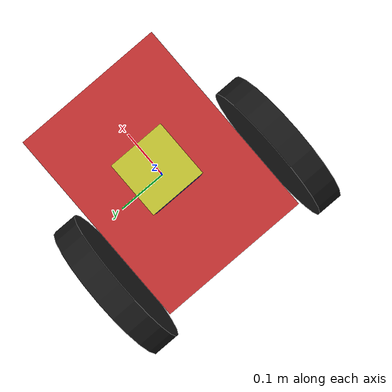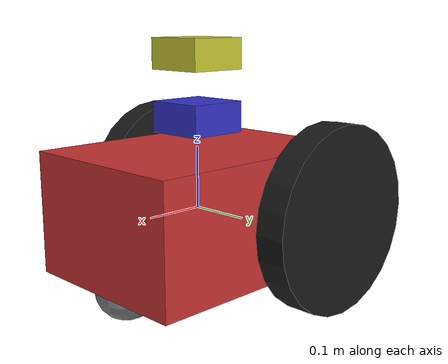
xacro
<?xml version="1.0"?>
<robot xmlns:xacro="http://www.ros.org/wiki/xacro" name="diffbot_sensor">

  <xacro:property name="M_PI" value="3.1415926535897931" />
  <!-- Parameters -->
  <xacro:property name="base_mass" value="5.0" />
  <xacro:property name="wheel_mass" value="0.5" />
  <xacro:property name="caster_mass" value="0.5" />

  <xacro:property name="base_size" value="0.4 0.3 0.2" />
  <xacro:property name="wheel_radius" value="0.15" />
  <xacro:property name="wheel_width" value="0.05" />
  <xacro:property name="caster_radius" value="0.05" />

  <xacro:property name="wheel_separation" value="0.4" />
  <xacro:property name="wheel_y_offset" value="0.2" />
  <xacro:property name="wheel_x_offset" value="-0.1" />
  <xacro:property name="caster_x_offset" value="0.15" />
  <xacro:property name="caster_z_offset" value="-0.1" />

  <!-- Base Link -->
  <link name="base_link">
    <inertial>
      <mass value="${base_mass}" />
      <inertia ixx="0.1" ixy="0.0" ixz="0.0" iyy="0.1" iyz="0.0" izz="0.1" />
    </inertial>
    <visual>
      <geometry>
        <box size="${base_size}" />
      </geometry>
      <material name="red">
        <color rgba="0.8 0.2 0.2 1" />
      </material>
    </visual>
    <collision>
      <geometry>
        <box size="${base_size}" />
      </geometry>
    </collision>
  </link>

  <!-- Wheel Macro -->
  <xacro:macro name="wheel" params="prefix reflect">
    <link name="${prefix}_wheel">
      <inertial>
        <mass value="${wheel_mass}" />
        <inertia ixx="0.02" ixy="0.0" ixz="0.0" iyy="0.02" iyz="0.0" izz="0.02" />
      </inertial>
      <visual>
        <origin xyz="0 0 0" rpy="${M_PI/2} 0 0" />
        <geometry>
          <cylinder radius="${wheel_radius}" length="${wheel_width}" />
        </geometry>
        <material name="black">
          <color rgba="0.1 0.1 0.1 1" />
        </material>
      </visual>
      <collision>
        <origin xyz="0 0 0" rpy="${M_PI/2} 0 0" />
        <geometry>
          <cylinder radius="${wheel_radius}" length="${wheel_width}" />
        </geometry>
        <surface>
          <friction>
            <ode>
              <mu>1.0</mu>
              <mu2>1.0</mu2>
              <fdir1>1 0 0</fdir1>
            </ode>
          </friction>
          <contact>
            <ode>
              <kp>1e6</kp>
              <kd>100</kd>
            </ode>
          </contact>
        </surface>
      </collision>
    </link>

    <joint name="${prefix}_wheel_joint" type="continuous">
      <parent link="base_link" />
      <child link="${prefix}_wheel" />
      <origin xyz="${wheel_x_offset} ${reflect * wheel_y_offset} 0" rpy="0 0 0" />
      <axis xyz="0 1 0" />
    </joint>

    <!-- Gazebo reference for wheel physics -->
    <gazebo reference="${prefix}_wheel">
      <mu1>1.0</mu1>
      <mu2>1.0</mu2>
      <kp>1000000.0</kp>
      <kd>100.0</kd>
      <fdir1>1 0 0</fdir1>
    </gazebo>
  </xacro:macro>

  <!-- Create wheels -->
  <xacro:wheel prefix="left" reflect="1" />
  <xacro:wheel prefix="right" reflect="-1" />

  <!-- Caster Wheel -->
  <link name="caster_wheel">
    <inertial>
      <mass value="${caster_mass}" />
      <inertia ixx="0.001" ixy="0.0" ixz="0.0" iyy="0.001" iyz="0.0" izz="0.001" />
    </inertial>
    <visual>
      <geometry>
        <sphere radius="${caster_radius}" />
      </geometry>
      <material name="gray">
        <color rgba="0.5 0.5 0.5 1" />
      </material>
    </visual>
    <collision>
      <geometry>
        <sphere radius="${caster_radius}" />
      </geometry>
      <surface>
        <friction>
          <ode>
            <mu>0.1</mu>
            <mu2>0.1</mu2>
          </ode>
        </friction>
        <contact>
          <ode>
            <kp>1e5</kp>
            <kd>10</kd>
          </ode>
        </contact>
      </surface>
    </collision>
  </link>

  <joint name="caster_wheel_joint" type="fixed">
    <parent link="base_link" />
    <child link="caster_wheel" />
    <origin xyz="${caster_x_offset} 0 ${caster_z_offset}" rpy="0 0 0" />
  </joint>

  <gazebo reference="caster_wheel">
    <mu1>0.1</mu1>
    <mu2>0.1</mu2>
    <kp>100000.0</kp>
    <kd>10.0</kd>
  </gazebo>

  <!-- IMU -->
  <link name="imu_link">
    <inertial>
      <mass value="0.001" />
      <!-- Avoid zero mass -->
      <inertia ixx="1e-6" ixy="0" ixz="0" iyy="1e-6" iyz="0" izz="1e-6" />
    </inertial>
    <visual>
      <geometry>
        <box size="0.1 0.1 0.05" />
      </geometry>
      <material name="blue">
        <color rgba="0.2 0.2 0.8 1" />
      </material>
    </visual>
    <collision>
      <geometry>
        <box size="0.1 0.1 0.05" />
      </geometry>
    </collision>
  </link>

  <joint name="imu_joint" type="fixed">
    <parent link="base_link" />
    <child link="imu_link" />
    <origin xyz="0 0 0.15" rpy="0 0 0" />
  </joint>

  <gazebo reference="imu_link">
    <sensor name="imu_sensor" type="imu">
      <always_on>1</always_on>
      <update_rate>100</update_rate>
      <visualize>true</visualize>
      <topic>imu</topic>
      <plugin filename="gz-sim-imu-system" name="gz::sim::systems::Imu"/>
    </sensor>
  </gazebo>

  <!-- Lidar -->
  <link name="lidar_link">
    <inertial>
      <mass value="0.001" />
      <!-- Avoid zero mass -->
      <inertia ixx="1e-6" ixy="0" ixz="0" iyy="1e-6" iyz="0" izz="1e-6" />
    </inertial>
    <visual>
      <geometry>
        <box size="0.1 0.1 0.05" />
      </geometry>
      <material name="yellow">
        <color rgba="0.8 0.8 0.2 1" />
      </material>
    </visual>
    <collision>
      <geometry>
        <box size="0.1 0.1 0.05" />
      </geometry>
    </collision>
  </link>

  <joint name="lidar_joint" type="fixed">
    <parent link="base_link" />
    <child link="lidar_link" />
    <origin xyz="0 0 0.25" rpy="0 0 0" />
  </joint>

  <gazebo reference="imu_link">
    <sensor name='gpu_lidar' type='gpu_lidar'>"
      <pose relative_to='lidar_frame'>0 0 0 0 0 0</pose>
      <topic>scan</topic>
      <update_rate>10</update_rate>
      <ray>
        <scan>
          <horizontal>
            <samples>640</samples>
            <resolution>1</resolution>
            <min_angle>-1.396263</min_angle>
            <max_angle>1.396263</max_angle>
          </horizontal>
          <vertical>
            <samples>1</samples>
            <resolution>0.01</resolution>
            <min_angle>0</min_angle>
            <max_angle>0</max_angle>
          </vertical>
        </scan>
        <range>
          <min>0.08</min>
          <max>10.0</max>
          <resolution>0.01</resolution>
        </range>
      </ray>
      <always_on>1</always_on>
      <visualize>true</visualize>
    </sensor>
  </gazebo>

  <!-- Gazebo DiffDrive Plugin -->
  <gazebo>
    <plugin filename="gz-sim-diff-drive-system" name="gz::sim::systems::DiffDrive">
      <left_joint>left_wheel_joint</left_joint>
      <right_joint>right_wheel_joint</right_joint>
      <wheel_separation>${wheel_separation}</wheel_separation>
      <wheel_radius>${wheel_radius}</wheel_radius>
      <odom_publish_frequency>30</odom_publish_frequency>
      <topic>cmd_vel</topic>
      <odom_topic>odom</odom_topic>
      <odom_frame>odom</odom_frame>
      <robot_base_frame>base_link</robot_base_frame>
    </plugin>
  </gazebo>

  <!-- JOINT STATE PUBLISHER PLUGIN FOR GAZEBO -->
  <gazebo>
    <plugin filename="gz-sim-joint-state-publisher-system" name="gz::sim::systems::JointStatePublisher">
      <publish_rate>100</publish_rate>
      <joint_name>left_wheel_joint</joint_name>
      <joint_name>right_wheel_joint</joint_name>
    </plugin>
  </gazebo>

</robot>
